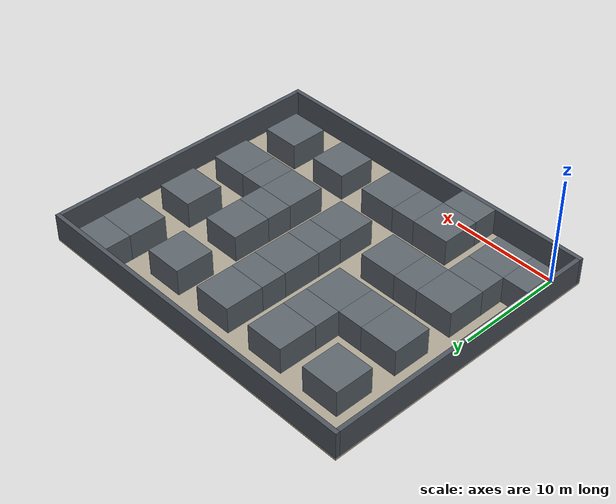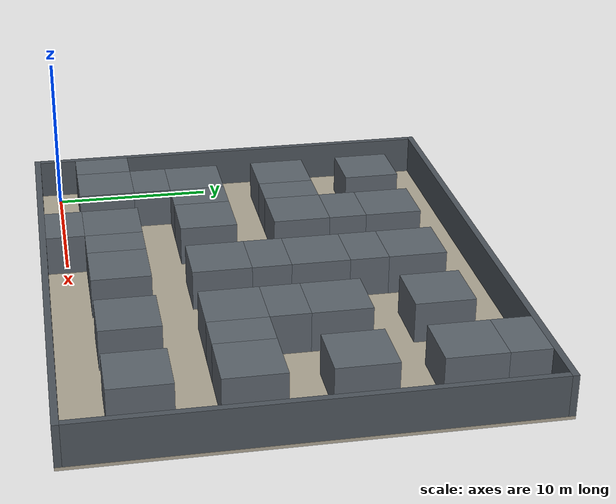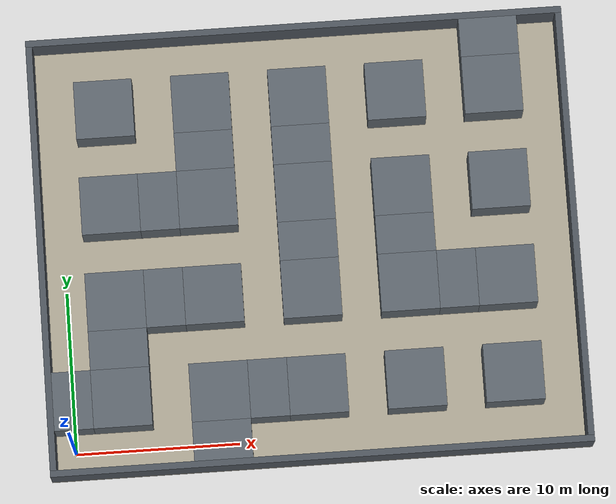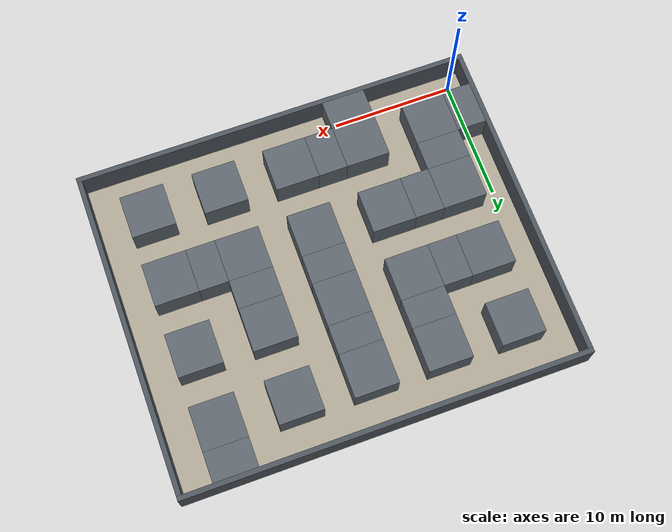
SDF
<?xml version="1.0"?>
<sdf version="1.9">
  <world name="tunnel_maze_500">
    <gravity>0 0 -9.81</gravity>
    <physics name="1ms" type="ignored"><max_step_size>0.001</max_step_size><real_time_factor>1</real_time_factor></physics>
    <plugin filename="gz-sim-physics-system" name="gz::sim::systems::Physics"/>
    <plugin filename="gz-sim-user-commands-system" name="gz::sim::systems::UserCommands"/>
    <plugin filename="gz-sim-scene-broadcaster-system" name="gz::sim::systems::SceneBroadcaster"/>
    <plugin filename="gz-sim-sensors-system" name="gz::sim::systems::Sensors"><render_engine>ogre2</render_engine></plugin>
    <plugin filename="gz-sim-imu-system" name="gz::sim::systems::Imu"/>
    <plugin filename="gz-sim-contact-system" name="gz::sim::systems::Contact"/>
    <scene><ambient>0.6 0.6 0.6 1</ambient><background>0.75 0.8 0.85 1</background><shadows>false</shadows></scene>
    <light name="sun" type="directional">
      <pose>15 12 20 0 0 0</pose><cast_shadows>false</cast_shadows>
      <diffuse>0.8 0.8 0.8 1</diffuse><specular>0.1 0.1 0.1 1</specular>
      <attenuation><range>1000</range><constant>0.9</constant><linear>0.01</linear><quadratic>0.001</quadratic></attenuation>
      <direction>-0.3 0.2 -1</direction>
    </light>
    <model name="floor"><static>true</static><pose>15 12 -0.1 0 0 0</pose>
      <link name="body">
        <collision name="collision"><geometry><box><size>33.2 27.2 0.2</size></box></geometry></collision>
        <visual name="visual"><geometry><box><size>33.2 27.2 0.2</size></box></geometry><material><ambient>0.67 0.64 0.57 1</ambient><diffuse>0.67 0.64 0.57 1</diffuse></material></visual>
      </link>
    </model>
    <model name="rock_0_1"><static>true</static><pose>0 3 1.25 0 0 0</pose>
      <link name="body">
        <collision name="collision"><geometry><box><size>2.4 3.6 2.5</size></box></geometry></collision>
        <visual name="visual"><geometry><box><size>2.4 3.6 2.5</size></box></geometry><material><ambient>0.36 0.39 0.42 1</ambient><diffuse>0.36 0.39 0.42 1</diffuse></material></visual>
      </link>
    </model>
    <model name="rock_1_1"><static>true</static><pose>3 3 1.25 0 0 0</pose>
      <link name="body">
        <collision name="collision"><geometry><box><size>3.6 3.6 2.5</size></box></geometry></collision>
        <visual name="visual"><geometry><box><size>3.6 3.6 2.5</size></box></geometry><material><ambient>0.36 0.39 0.42 1</ambient><diffuse>0.36 0.39 0.42 1</diffuse></material></visual>
      </link>
    </model>
    <model name="rock_1_2"><static>true</static><pose>3 6 1.25 0 0 0</pose>
      <link name="body">
        <collision name="collision"><geometry><box><size>3.6 2.4 2.5</size></box></geometry></collision>
        <visual name="visual"><geometry><box><size>3.6 2.4 2.5</size></box></geometry><material><ambient>0.36 0.39 0.42 1</ambient><diffuse>0.36 0.39 0.42 1</diffuse></material></visual>
      </link>
    </model>
    <model name="rock_1_3"><static>true</static><pose>3 9 1.25 0 0 0</pose>
      <link name="body">
        <collision name="collision"><geometry><box><size>3.6 3.6 2.5</size></box></geometry></collision>
        <visual name="visual"><geometry><box><size>3.6 3.6 2.5</size></box></geometry><material><ambient>0.36 0.39 0.42 1</ambient><diffuse>0.36 0.39 0.42 1</diffuse></material></visual>
      </link>
    </model>
    <model name="rock_1_5"><static>true</static><pose>3 15 1.25 0 0 0</pose>
      <link name="body">
        <collision name="collision"><geometry><box><size>3.6 3.6 2.5</size></box></geometry></collision>
        <visual name="visual"><geometry><box><size>3.6 3.6 2.5</size></box></geometry><material><ambient>0.36 0.39 0.42 1</ambient><diffuse>0.36 0.39 0.42 1</diffuse></material></visual>
      </link>
    </model>
    <model name="rock_1_7"><static>true</static><pose>3 21 1.25 0 0 0</pose>
      <link name="body">
        <collision name="collision"><geometry><box><size>3.6 3.6 2.5</size></box></geometry></collision>
        <visual name="visual"><geometry><box><size>3.6 3.6 2.5</size></box></geometry><material><ambient>0.36 0.39 0.42 1</ambient><diffuse>0.36 0.39 0.42 1</diffuse></material></visual>
      </link>
    </model>
    <model name="rock_2_3"><static>true</static><pose>6 9 1.25 0 0 0</pose>
      <link name="body">
        <collision name="collision"><geometry><box><size>2.4 3.6 2.5</size></box></geometry></collision>
        <visual name="visual"><geometry><box><size>2.4 3.6 2.5</size></box></geometry><material><ambient>0.36 0.39 0.42 1</ambient><diffuse>0.36 0.39 0.42 1</diffuse></material></visual>
      </link>
    </model>
    <model name="rock_2_5"><static>true</static><pose>6 15 1.25 0 0 0</pose>
      <link name="body">
        <collision name="collision"><geometry><box><size>2.4 3.6 2.5</size></box></geometry></collision>
        <visual name="visual"><geometry><box><size>2.4 3.6 2.5</size></box></geometry><material><ambient>0.36 0.39 0.42 1</ambient><diffuse>0.36 0.39 0.42 1</diffuse></material></visual>
      </link>
    </model>
    <model name="rock_3_0"><static>true</static><pose>9 0 1.25 0 0 0</pose>
      <link name="body">
        <collision name="collision"><geometry><box><size>3.6 2.4 2.5</size></box></geometry></collision>
        <visual name="visual"><geometry><box><size>3.6 2.4 2.5</size></box></geometry><material><ambient>0.36 0.39 0.42 1</ambient><diffuse>0.36 0.39 0.42 1</diffuse></material></visual>
      </link>
    </model>
    <model name="rock_3_1"><static>true</static><pose>9 3 1.25 0 0 0</pose>
      <link name="body">
        <collision name="collision"><geometry><box><size>3.6 3.6 2.5</size></box></geometry></collision>
        <visual name="visual"><geometry><box><size>3.6 3.6 2.5</size></box></geometry><material><ambient>0.36 0.39 0.42 1</ambient><diffuse>0.36 0.39 0.42 1</diffuse></material></visual>
      </link>
    </model>
    <model name="rock_3_3"><static>true</static><pose>9 9 1.25 0 0 0</pose>
      <link name="body">
        <collision name="collision"><geometry><box><size>3.6 3.6 2.5</size></box></geometry></collision>
        <visual name="visual"><geometry><box><size>3.6 3.6 2.5</size></box></geometry><material><ambient>0.36 0.39 0.42 1</ambient><diffuse>0.36 0.39 0.42 1</diffuse></material></visual>
      </link>
    </model>
    <model name="rock_3_5"><static>true</static><pose>9 15 1.25 0 0 0</pose>
      <link name="body">
        <collision name="collision"><geometry><box><size>3.6 3.6 2.5</size></box></geometry></collision>
        <visual name="visual"><geometry><box><size>3.6 3.6 2.5</size></box></geometry><material><ambient>0.36 0.39 0.42 1</ambient><diffuse>0.36 0.39 0.42 1</diffuse></material></visual>
      </link>
    </model>
    <model name="rock_3_6"><static>true</static><pose>9 18 1.25 0 0 0</pose>
      <link name="body">
        <collision name="collision"><geometry><box><size>3.6 2.4 2.5</size></box></geometry></collision>
        <visual name="visual"><geometry><box><size>3.6 2.4 2.5</size></box></geometry><material><ambient>0.36 0.39 0.42 1</ambient><diffuse>0.36 0.39 0.42 1</diffuse></material></visual>
      </link>
    </model>
    <model name="rock_3_7"><static>true</static><pose>9 21 1.25 0 0 0</pose>
      <link name="body">
        <collision name="collision"><geometry><box><size>3.6 3.6 2.5</size></box></geometry></collision>
        <visual name="visual"><geometry><box><size>3.6 3.6 2.5</size></box></geometry><material><ambient>0.36 0.39 0.42 1</ambient><diffuse>0.36 0.39 0.42 1</diffuse></material></visual>
      </link>
    </model>
    <model name="rock_4_1"><static>true</static><pose>12 3 1.25 0 0 0</pose>
      <link name="body">
        <collision name="collision"><geometry><box><size>2.4 3.6 2.5</size></box></geometry></collision>
        <visual name="visual"><geometry><box><size>2.4 3.6 2.5</size></box></geometry><material><ambient>0.36 0.39 0.42 1</ambient><diffuse>0.36 0.39 0.42 1</diffuse></material></visual>
      </link>
    </model>
    <model name="rock_5_1"><static>true</static><pose>15 3 1.25 0 0 0</pose>
      <link name="body">
        <collision name="collision"><geometry><box><size>3.6 3.6 2.5</size></box></geometry></collision>
        <visual name="visual"><geometry><box><size>3.6 3.6 2.5</size></box></geometry><material><ambient>0.36 0.39 0.42 1</ambient><diffuse>0.36 0.39 0.42 1</diffuse></material></visual>
      </link>
    </model>
    <model name="rock_5_3"><static>true</static><pose>15 9 1.25 0 0 0</pose>
      <link name="body">
        <collision name="collision"><geometry><box><size>3.6 3.6 2.5</size></box></geometry></collision>
        <visual name="visual"><geometry><box><size>3.6 3.6 2.5</size></box></geometry><material><ambient>0.36 0.39 0.42 1</ambient><diffuse>0.36 0.39 0.42 1</diffuse></material></visual>
      </link>
    </model>
    <model name="rock_5_4"><static>true</static><pose>15 12 1.25 0 0 0</pose>
      <link name="body">
        <collision name="collision"><geometry><box><size>3.6 2.4 2.5</size></box></geometry></collision>
        <visual name="visual"><geometry><box><size>3.6 2.4 2.5</size></box></geometry><material><ambient>0.36 0.39 0.42 1</ambient><diffuse>0.36 0.39 0.42 1</diffuse></material></visual>
      </link>
    </model>
    <model name="rock_5_5"><static>true</static><pose>15 15 1.25 0 0 0</pose>
      <link name="body">
        <collision name="collision"><geometry><box><size>3.6 3.6 2.5</size></box></geometry></collision>
        <visual name="visual"><geometry><box><size>3.6 3.6 2.5</size></box></geometry><material><ambient>0.36 0.39 0.42 1</ambient><diffuse>0.36 0.39 0.42 1</diffuse></material></visual>
      </link>
    </model>
    <model name="rock_5_6"><static>true</static><pose>15 18 1.25 0 0 0</pose>
      <link name="body">
        <collision name="collision"><geometry><box><size>3.6 2.4 2.5</size></box></geometry></collision>
        <visual name="visual"><geometry><box><size>3.6 2.4 2.5</size></box></geometry><material><ambient>0.36 0.39 0.42 1</ambient><diffuse>0.36 0.39 0.42 1</diffuse></material></visual>
      </link>
    </model>
    <model name="rock_5_7"><static>true</static><pose>15 21 1.25 0 0 0</pose>
      <link name="body">
        <collision name="collision"><geometry><box><size>3.6 3.6 2.5</size></box></geometry></collision>
        <visual name="visual"><geometry><box><size>3.6 3.6 2.5</size></box></geometry><material><ambient>0.36 0.39 0.42 1</ambient><diffuse>0.36 0.39 0.42 1</diffuse></material></visual>
      </link>
    </model>
    <model name="rock_7_1"><static>true</static><pose>21 3 1.25 0 0 0</pose>
      <link name="body">
        <collision name="collision"><geometry><box><size>3.6 3.6 2.5</size></box></geometry></collision>
        <visual name="visual"><geometry><box><size>3.6 3.6 2.5</size></box></geometry><material><ambient>0.36 0.39 0.42 1</ambient><diffuse>0.36 0.39 0.42 1</diffuse></material></visual>
      </link>
    </model>
    <model name="rock_7_3"><static>true</static><pose>21 9 1.25 0 0 0</pose>
      <link name="body">
        <collision name="collision"><geometry><box><size>3.6 3.6 2.5</size></box></geometry></collision>
        <visual name="visual"><geometry><box><size>3.6 3.6 2.5</size></box></geometry><material><ambient>0.36 0.39 0.42 1</ambient><diffuse>0.36 0.39 0.42 1</diffuse></material></visual>
      </link>
    </model>
    <model name="rock_7_4"><static>true</static><pose>21 12 1.25 0 0 0</pose>
      <link name="body">
        <collision name="collision"><geometry><box><size>3.6 2.4 2.5</size></box></geometry></collision>
        <visual name="visual"><geometry><box><size>3.6 2.4 2.5</size></box></geometry><material><ambient>0.36 0.39 0.42 1</ambient><diffuse>0.36 0.39 0.42 1</diffuse></material></visual>
      </link>
    </model>
    <model name="rock_7_5"><static>true</static><pose>21 15 1.25 0 0 0</pose>
      <link name="body">
        <collision name="collision"><geometry><box><size>3.6 3.6 2.5</size></box></geometry></collision>
        <visual name="visual"><geometry><box><size>3.6 3.6 2.5</size></box></geometry><material><ambient>0.36 0.39 0.42 1</ambient><diffuse>0.36 0.39 0.42 1</diffuse></material></visual>
      </link>
    </model>
    <model name="rock_7_7"><static>true</static><pose>21 21 1.25 0 0 0</pose>
      <link name="body">
        <collision name="collision"><geometry><box><size>3.6 3.6 2.5</size></box></geometry></collision>
        <visual name="visual"><geometry><box><size>3.6 3.6 2.5</size></box></geometry><material><ambient>0.36 0.39 0.42 1</ambient><diffuse>0.36 0.39 0.42 1</diffuse></material></visual>
      </link>
    </model>
    <model name="rock_8_3"><static>true</static><pose>24 9 1.25 0 0 0</pose>
      <link name="body">
        <collision name="collision"><geometry><box><size>2.4 3.6 2.5</size></box></geometry></collision>
        <visual name="visual"><geometry><box><size>2.4 3.6 2.5</size></box></geometry><material><ambient>0.36 0.39 0.42 1</ambient><diffuse>0.36 0.39 0.42 1</diffuse></material></visual>
      </link>
    </model>
    <model name="rock_9_1"><static>true</static><pose>27 3 1.25 0 0 0</pose>
      <link name="body">
        <collision name="collision"><geometry><box><size>3.6 3.6 2.5</size></box></geometry></collision>
        <visual name="visual"><geometry><box><size>3.6 3.6 2.5</size></box></geometry><material><ambient>0.36 0.39 0.42 1</ambient><diffuse>0.36 0.39 0.42 1</diffuse></material></visual>
      </link>
    </model>
    <model name="rock_9_3"><static>true</static><pose>27 9 1.25 0 0 0</pose>
      <link name="body">
        <collision name="collision"><geometry><box><size>3.6 3.6 2.5</size></box></geometry></collision>
        <visual name="visual"><geometry><box><size>3.6 3.6 2.5</size></box></geometry><material><ambient>0.36 0.39 0.42 1</ambient><diffuse>0.36 0.39 0.42 1</diffuse></material></visual>
      </link>
    </model>
    <model name="rock_9_5"><static>true</static><pose>27 15 1.25 0 0 0</pose>
      <link name="body">
        <collision name="collision"><geometry><box><size>3.6 3.6 2.5</size></box></geometry></collision>
        <visual name="visual"><geometry><box><size>3.6 3.6 2.5</size></box></geometry><material><ambient>0.36 0.39 0.42 1</ambient><diffuse>0.36 0.39 0.42 1</diffuse></material></visual>
      </link>
    </model>
    <model name="rock_9_7"><static>true</static><pose>27 21 1.25 0 0 0</pose>
      <link name="body">
        <collision name="collision"><geometry><box><size>3.6 3.6 2.5</size></box></geometry></collision>
        <visual name="visual"><geometry><box><size>3.6 3.6 2.5</size></box></geometry><material><ambient>0.36 0.39 0.42 1</ambient><diffuse>0.36 0.39 0.42 1</diffuse></material></visual>
      </link>
    </model>
    <model name="rock_9_8"><static>true</static><pose>27 24 1.25 0 0 0</pose>
      <link name="body">
        <collision name="collision"><geometry><box><size>3.6 2.4 2.5</size></box></geometry></collision>
        <visual name="visual"><geometry><box><size>3.6 2.4 2.5</size></box></geometry><material><ambient>0.36 0.39 0.42 1</ambient><diffuse>0.36 0.39 0.42 1</diffuse></material></visual>
      </link>
    </model>
    <model name="south_boundary"><static>true</static><pose>15 -1.4 1.25 0 0 0</pose>
      <link name="body">
        <collision name="collision"><geometry><box><size>33.2 0.4 2.5</size></box></geometry></collision>
        <visual name="visual"><geometry><box><size>33.2 0.4 2.5</size></box></geometry><material><ambient>0.3 0.33 0.36 1</ambient><diffuse>0.3 0.33 0.36 1</diffuse></material></visual>
      </link>
    </model>
    <model name="north_boundary"><static>true</static><pose>15 25.4 1.25 0 0 0</pose>
      <link name="body">
        <collision name="collision"><geometry><box><size>33.2 0.4 2.5</size></box></geometry></collision>
        <visual name="visual"><geometry><box><size>33.2 0.4 2.5</size></box></geometry><material><ambient>0.3 0.33 0.36 1</ambient><diffuse>0.3 0.33 0.36 1</diffuse></material></visual>
      </link>
    </model>
    <model name="west_boundary"><static>true</static><pose>-1.4 12 1.25 0 0 0</pose>
      <link name="body">
        <collision name="collision"><geometry><box><size>0.4 26.4 2.5</size></box></geometry></collision>
        <visual name="visual"><geometry><box><size>0.4 26.4 2.5</size></box></geometry><material><ambient>0.3 0.33 0.36 1</ambient><diffuse>0.3 0.33 0.36 1</diffuse></material></visual>
      </link>
    </model>
    <model name="east_boundary"><static>true</static><pose>31.4 12 1.25 0 0 0</pose>
      <link name="body">
        <collision name="collision"><geometry><box><size>0.4 26.4 2.5</size></box></geometry></collision>
        <visual name="visual"><geometry><box><size>0.4 26.4 2.5</size></box></geometry><material><ambient>0.3 0.33 0.36 1</ambient><diffuse>0.3 0.33 0.36 1</diffuse></material></visual>
      </link>
    </model>
  </world>
</sdf>
